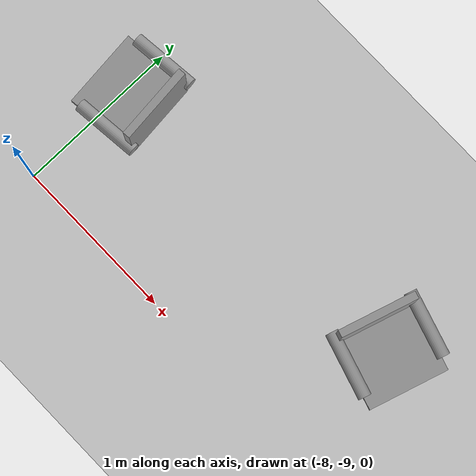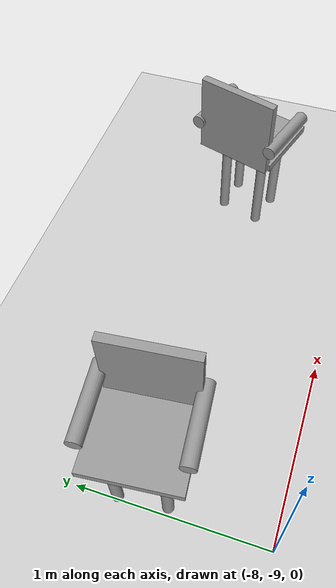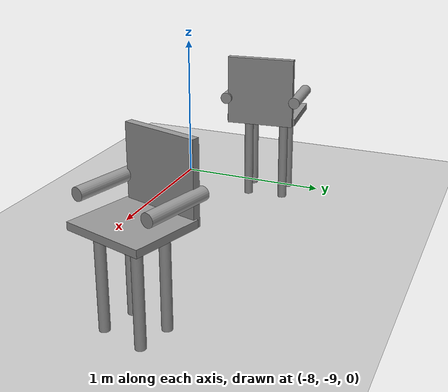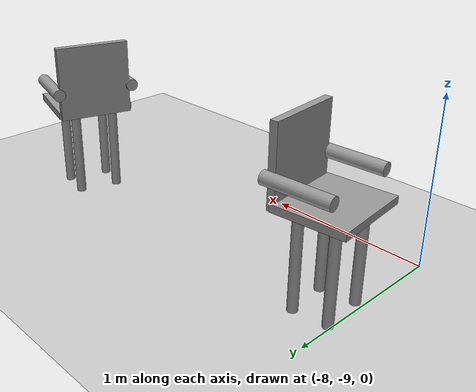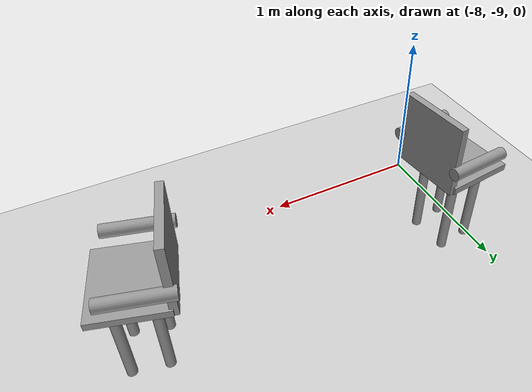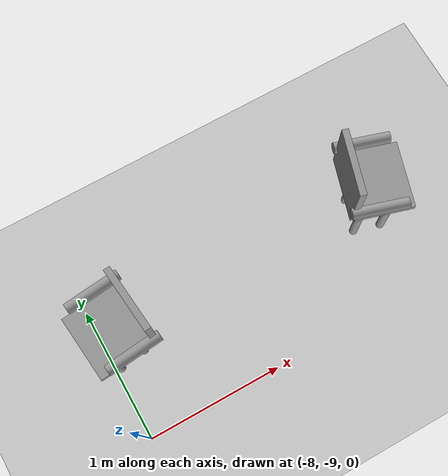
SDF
<sdf version="1.6">
 <world name="default">
  <model name="ground_plane">
   <static>1</static>
   <link name="link">
    <collision name="collision">
     <geometry><plane><normal>0 0 1</normal><size>100 100</size></plane></geometry>
     <surface>
      <contact><collide_bitmask>65535</collide_bitmask></contact>
      <friction><ode><mu>100</mu><mu2>50</mu2></ode></friction>
     </surface>
    </collision>
    <visual name="visual">
     <cast_shadows>0</cast_shadows>
     <geometry><plane><normal>0 0 1</normal><size>100 100</size></plane></geometry>
     <material>
      <script><uri>file://media/materials/scripts/gazebo.material</uri><name>Gazebo/Grey</name></script>
     </material>
    </visual>
   </link>
  </model>
  <model name="chair_clone_1">
   <link name="link_4">
    <inertial>
     <mass>0.00194051</mass>
     <inertia>
      <ixx>5.14044e-05</ixx>
      <ixy>0</ixy>
      <ixz>0</ixz>
      <iyy>5.14044e-05</iyy>
      <iyz>0</iyz>
      <izz>8.34973e-07</izz>
     </inertia>
    </inertial>
    <pose>-0.140129 -0.127166 -0.209129 0 -0 0</pose>
    <visual name="visual">
     <geometry><cylinder><radius>0.0293355</radius><length>0.561516</length></cylinder></geometry>
     <material>
      <lighting>1</lighting>
      <script><uri>file://media/materials/scripts/gazebo.material</uri><name>Gazebo/Grey</name></script>
      <emissive>0 0 0 1</emissive>
     </material>
    </visual>
    <collision name="collision">
     <geometry><cylinder><radius>0.029336</radius><length>0.561516</length></cylinder></geometry>
     <surface>
      <friction>
       <ode><mu>1</mu><mu2>1</mu2><fdir1>0 0 0</fdir1><slip1>0</slip1><slip2>0</slip2></ode>
       <torsional>
        <coefficient>1</coefficient>
        <patch_radius>0</patch_radius>
        <surface_radius>0</surface_radius>
        <use_patch_radius>1</use_patch_radius>
        <ode><slip>0</slip></ode>
       </torsional>
      </friction>
      <bounce><restitution_coefficient>0</restitution_coefficient><threshold>1e+06</threshold></bounce>
      <contact>
       <collide_without_contact>0</collide_without_contact>
       <collide_without_contact_bitmask>1</collide_without_contact_bitmask>
       <collide_bitmask>1</collide_bitmask>
       <ode>
        <soft_cfm>0</soft_cfm>
        <soft_erp>0.2</soft_erp>
        <kp>1e+13</kp>
        <kd>1</kd>
        <max_vel>0.01</max_vel>
        <min_depth>0</min_depth>
       </ode>
       <bullet>
        <split_impulse>1</split_impulse>
        <split_impulse_penetration_threshold>-0.01</split_impulse_penetration_threshold>
        <soft_cfm>0</soft_cfm>
        <soft_erp>0.2</soft_erp>
        <kp>1e+13</kp>
        <kd>1</kd>
       </bullet>
      </contact>
     </surface>
    </collision>
   </link>
   <link name="link_4_clone">
    <inertial>
     <mass>0.00194051</mass>
     <inertia>
      <ixx>5.14044e-05</ixx>
      <ixy>0</ixy>
      <ixz>0</ixz>
      <iyy>5.14044e-05</iyy>
      <iyz>0</iyz>
      <izz>8.34973e-07</izz>
     </inertia>
    </inertial>
    <pose>-0.139565 0.126187 -0.209129 0 -0 0</pose>
    <visual name="visual">
     <geometry><cylinder><radius>0.0293355</radius><length>0.561516</length></cylinder></geometry>
     <material>
      <lighting>1</lighting>
      <script><uri>file://media/materials/scripts/gazebo.material</uri><name>Gazebo/Grey</name></script>
      <shader type="pixel"/>
      <emissive>0 0 0 1</emissive>
     </material>
    </visual>
    <collision name="collision">
     <geometry><cylinder><radius>0.029336</radius><length>0.561516</length></cylinder></geometry>
     <surface>
      <friction>
       <ode><mu>1</mu><mu2>1</mu2><fdir1>0 0 0</fdir1><slip1>0</slip1><slip2>0</slip2></ode>
       <torsional>
        <coefficient>1</coefficient>
        <patch_radius>0</patch_radius>
        <surface_radius>0</surface_radius>
        <use_patch_radius>1</use_patch_radius>
        <ode><slip>0</slip></ode>
       </torsional>
      </friction>
      <bounce><restitution_coefficient>0</restitution_coefficient><threshold>1e+06</threshold></bounce>
      <contact>
       <collide_without_contact>0</collide_without_contact>
       <collide_without_contact_bitmask>1</collide_without_contact_bitmask>
       <collide_bitmask>1</collide_bitmask>
       <ode>
        <soft_cfm>0</soft_cfm>
        <soft_erp>0.2</soft_erp>
        <kp>1e+13</kp>
        <kd>1</kd>
        <max_vel>0.01</max_vel>
        <min_depth>0</min_depth>
       </ode>
       <bullet>
        <split_impulse>1</split_impulse>
        <split_impulse_penetration_threshold>-0.01</split_impulse_penetration_threshold>
        <soft_cfm>0</soft_cfm>
        <soft_erp>0.2</soft_erp>
        <kp>1e+13</kp>
        <kd>1</kd>
       </bullet>
      </contact>
     </surface>
    </collision>
   </link>
   <link name="link_4_clone_0">
    <inertial>
     <mass>0.00194051</mass>
     <inertia>
      <ixx>5.14044e-05</ixx>
      <ixy>0</ixy>
      <ixz>0</ixz>
      <iyy>5.14044e-05</iyy>
      <iyz>0</iyz>
      <izz>8.34973e-07</izz>
     </inertia>
    </inertial>
    <pose>0.062929 0.13105 -0.209129 0 -0 0</pose>
    <visual name="visual">
     <geometry><cylinder><radius>0.0293355</radius><length>0.561516</length></cylinder></geometry>
     <material>
      <lighting>1</lighting>
      <script><uri>file://media/materials/scripts/gazebo.material</uri><name>Gazebo/Grey</name></script>
      <shader type="pixel"/>
      <emissive>0 0 0 1</emissive>
     </material>
    </visual>
    <collision name="collision">
     <geometry><cylinder><radius>0.029336</radius><length>0.561516</length></cylinder></geometry>
     <surface>
      <friction>
       <ode><mu>1</mu><mu2>1</mu2><fdir1>0 0 0</fdir1><slip1>0</slip1><slip2>0</slip2></ode>
       <torsional>
        <coefficient>1</coefficient>
        <patch_radius>0</patch_radius>
        <surface_radius>0</surface_radius>
        <use_patch_radius>1</use_patch_radius>
        <ode><slip>0</slip></ode>
       </torsional>
      </friction>
      <bounce><restitution_coefficient>0</restitution_coefficient><threshold>1e+06</threshold></bounce>
      <contact>
       <collide_without_contact>0</collide_without_contact>
       <collide_without_contact_bitmask>1</collide_without_contact_bitmask>
       <collide_bitmask>1</collide_bitmask>
       <ode>
        <soft_cfm>0</soft_cfm>
        <soft_erp>0.2</soft_erp>
        <kp>1e+13</kp>
        <kd>1</kd>
        <max_vel>0.01</max_vel>
        <min_depth>0</min_depth>
       </ode>
       <bullet>
        <split_impulse>1</split_impulse>
        <split_impulse_penetration_threshold>-0.01</split_impulse_penetration_threshold>
        <soft_cfm>0</soft_cfm>
        <soft_erp>0.2</soft_erp>
        <kp>1e+13</kp>
        <kd>1</kd>
       </bullet>
      </contact>
     </surface>
    </collision>
   </link>
   <link name="link_4_clone_1">
    <inertial>
     <mass>0.00194051</mass>
     <inertia>
      <ixx>5.14044e-05</ixx>
      <ixy>0</ixy>
      <ixz>0</ixz>
      <iyy>5.14044e-05</iyy>
      <iyz>0</iyz>
      <izz>8.34973e-07</izz>
     </inertia>
    </inertial>
    <pose>0.061641 -0.111934 -0.209129 0 -0 0</pose>
    <visual name="visual">
     <geometry><cylinder><radius>0.0293355</radius><length>0.561516</length></cylinder></geometry>
     <material>
      <lighting>1</lighting>
      <script><uri>file://media/materials/scripts/gazebo.material</uri><name>Gazebo/Grey</name></script>
      <shader type="pixel"/>
      <emissive>0 0 0 1</emissive>
     </material>
    </visual>
    <collision name="collision">
     <geometry><cylinder><radius>0.029336</radius><length>0.561516</length></cylinder></geometry>
     <surface>
      <friction>
       <ode><mu>1</mu><mu2>1</mu2><fdir1>0 0 0</fdir1><slip1>0</slip1><slip2>0</slip2></ode>
       <torsional>
        <coefficient>1</coefficient>
        <patch_radius>0</patch_radius>
        <surface_radius>0</surface_radius>
        <use_patch_radius>1</use_patch_radius>
        <ode><slip>0</slip></ode>
       </torsional>
      </friction>
      <bounce><restitution_coefficient>0</restitution_coefficient><threshold>1e+06</threshold></bounce>
      <contact>
       <collide_without_contact>0</collide_without_contact>
       <collide_without_contact_bitmask>1</collide_without_contact_bitmask>
       <collide_bitmask>1</collide_bitmask>
       <ode>
        <soft_cfm>0</soft_cfm>
        <soft_erp>0.2</soft_erp>
        <kp>1e+13</kp>
        <kd>1</kd>
        <max_vel>0.01</max_vel>
        <min_depth>0</min_depth>
       </ode>
       <bullet>
        <split_impulse>1</split_impulse>
        <split_impulse_penetration_threshold>-0.01</split_impulse_penetration_threshold>
        <soft_cfm>0</soft_cfm>
        <soft_erp>0.2</soft_erp>
        <kp>1e+13</kp>
        <kd>1</kd>
       </bullet>
      </contact>
     </surface>
    </collision>
   </link>
   <link name="link_5">
    <inertial>
     <mass>0.00816884</mass>
     <inertia>
      <ixx>0.00015002</ixx>
      <ixy>0</ixy>
      <ixz>0</ixz>
      <iyy>0.000115328</iyy>
      <iyz>0</iyz>
      <izz>0.000262862</izz>
     </inertia>
    </inertial>
    <pose>-0.041662 -0.005028 0.089077 0 -0 0</pose>
    <visual name="visual">
     <geometry><box><size>0.409378 0.467496 0.042729</size></box></geometry>
     <material>
      <lighting>1</lighting>
      <script><uri>file://media/materials/scripts/gazebo.material</uri><name>Gazebo/Grey</name></script>
      <emissive>0 0 0 1</emissive>
     </material>
    </visual>
    <collision name="collision">
     <geometry><box><size>0.409378 0.467496 0.042729</size></box></geometry>
     <surface>
      <friction>
       <ode><mu>1</mu><mu2>1</mu2><fdir1>0 0 0</fdir1><slip1>0</slip1><slip2>0</slip2></ode>
       <torsional>
        <coefficient>1</coefficient>
        <patch_radius>0</patch_radius>
        <surface_radius>0</surface_radius>
        <use_patch_radius>1</use_patch_radius>
        <ode><slip>0</slip></ode>
       </torsional>
      </friction>
      <bounce><restitution_coefficient>0</restitution_coefficient><threshold>1e+06</threshold></bounce>
      <contact>
       <collide_without_contact>0</collide_without_contact>
       <collide_without_contact_bitmask>1</collide_without_contact_bitmask>
       <collide_bitmask>1</collide_bitmask>
       <ode>
        <soft_cfm>0</soft_cfm>
        <soft_erp>0.2</soft_erp>
        <kp>1e+13</kp>
        <kd>1</kd>
        <max_vel>0.01</max_vel>
        <min_depth>0</min_depth>
       </ode>
       <bullet>
        <split_impulse>1</split_impulse>
        <split_impulse_penetration_threshold>-0.01</split_impulse_penetration_threshold>
        <soft_cfm>0</soft_cfm>
        <soft_erp>0.2</soft_erp>
        <kp>1e+13</kp>
        <kd>1</kd>
       </bullet>
      </contact>
     </surface>
    </collision>
   </link>
   <link name="link_6">
    <inertial>
     <mass>0.00855687</mass>
     <inertia>
      <ixx>0.000285159</ixx>
      <ixy>0</ixy>
      <ixz>0</ixz>
      <iyy>0.000146983</iyy>
      <iyz>0</iyz>
      <izz>0.000140925</izz>
     </inertia>
    </inertial>
    <pose>0.165697 -0.006458 0.287866 0 -0 0</pose>
    <visual name="visual">
     <geometry><box><size>0.0439 0.442383 0.451884</size></box></geometry>
     <material>
      <lighting>1</lighting>
      <script><uri>file://media/materials/scripts/gazebo.material</uri><name>Gazebo/Grey</name></script>
      <emissive>0 0 0 1</emissive>
     </material>
    </visual>
    <collision name="collision">
     <geometry><box><size>0.0439 0.442383 0.451884</size></box></geometry>
     <surface>
      <friction>
       <ode><mu>1</mu><mu2>1</mu2><fdir1>0 0 0</fdir1><slip1>0</slip1><slip2>0</slip2></ode>
       <torsional>
        <coefficient>1</coefficient>
        <patch_radius>0</patch_radius>
        <surface_radius>0</surface_radius>
        <use_patch_radius>1</use_patch_radius>
        <ode><slip>0</slip></ode>
       </torsional>
      </friction>
      <bounce><restitution_coefficient>0</restitution_coefficient><threshold>1e+06</threshold></bounce>
      <contact>
       <collide_without_contact>0</collide_without_contact>
       <collide_without_contact_bitmask>1</collide_without_contact_bitmask>
       <collide_bitmask>1</collide_bitmask>
       <ode>
        <soft_cfm>0</soft_cfm>
        <soft_erp>0.2</soft_erp>
        <kp>1e+13</kp>
        <kd>1</kd>
        <max_vel>0.01</max_vel>
        <min_depth>0</min_depth>
       </ode>
       <bullet>
        <split_impulse>1</split_impulse>
        <split_impulse_penetration_threshold>-0.01</split_impulse_penetration_threshold>
        <soft_cfm>0</soft_cfm>
        <soft_erp>0.2</soft_erp>
        <kp>1e+13</kp>
        <kd>1</kd>
       </bullet>
      </contact>
     </surface>
    </collision>
   </link>
   <link name="link_7">
    <inertial>
     <mass>0.00209129</mass>
     <inertia>
      <ixx>2.57536e-05</ixx>
      <ixy>0</ixy>
      <ixz>0</ixz>
      <iyy>2.57536e-05</iyy>
      <iyz>0</iyz>
      <izz>1.44551e-06</izz>
     </inertia>
    </inertial>
    <pose>0.0147 0.228665 0.230372 0 1.55081 0</pose>
    <visual name="visual">
     <geometry><cylinder><radius>0.0371808</radius><length>0.378984</length></cylinder></geometry>
     <material>
      <lighting>1</lighting>
      <script><uri>file://media/materials/scripts/gazebo.material</uri><name>Gazebo/Grey</name></script>
      <emissive>0 0 0 1</emissive>
     </material>
    </visual>
    <collision name="collision">
     <geometry><cylinder><radius>0.037181</radius><length>0.378984</length></cylinder></geometry>
     <surface>
      <friction>
       <ode><mu>1</mu><mu2>1</mu2><fdir1>0 0 0</fdir1><slip1>0</slip1><slip2>0</slip2></ode>
       <torsional>
        <coefficient>1</coefficient>
        <patch_radius>0</patch_radius>
        <surface_radius>0</surface_radius>
        <use_patch_radius>1</use_patch_radius>
        <ode><slip>0</slip></ode>
       </torsional>
      </friction>
      <bounce><restitution_coefficient>0</restitution_coefficient><threshold>1e+06</threshold></bounce>
      <contact>
       <collide_without_contact>0</collide_without_contact>
       <collide_without_contact_bitmask>1</collide_without_contact_bitmask>
       <collide_bitmask>1</collide_bitmask>
       <ode>
        <soft_cfm>0</soft_cfm>
        <soft_erp>0.2</soft_erp>
        <kp>1e+13</kp>
        <kd>1</kd>
        <max_vel>0.01</max_vel>
        <min_depth>0</min_depth>
       </ode>
       <bullet>
        <split_impulse>1</split_impulse>
        <split_impulse_penetration_threshold>-0.01</split_impulse_penetration_threshold>
        <soft_cfm>0</soft_cfm>
        <soft_erp>0.2</soft_erp>
        <kp>1e+13</kp>
        <kd>1</kd>
       </bullet>
      </contact>
     </surface>
    </collision>
   </link>
   <link name="link_7_clone">
    <inertial>
     <mass>0.00209129</mass>
     <inertia>
      <ixx>2.57536e-05</ixx>
      <ixy>0</ixy>
      <ixz>0</ixz>
      <iyy>2.57536e-05</iyy>
      <iyz>0</iyz>
      <izz>1.44551e-06</izz>
     </inertia>
    </inertial>
    <pose>0.01639 -0.235319 0.229201 0 1.55081 0</pose>
    <visual name="visual">
     <geometry><cylinder><radius>0.0371808</radius><length>0.378984</length></cylinder></geometry>
     <material>
      <lighting>1</lighting>
      <script><uri>file://media/materials/scripts/gazebo.material</uri><name>Gazebo/Grey</name></script>
      <shader type="pixel"/>
      <emissive>0 0 0 1</emissive>
     </material>
    </visual>
    <collision name="collision">
     <geometry><cylinder><radius>0.037181</radius><length>0.378984</length></cylinder></geometry>
     <surface>
      <friction>
       <ode><mu>1</mu><mu2>1</mu2><fdir1>0 0 0</fdir1><slip1>0</slip1><slip2>0</slip2></ode>
       <torsional>
        <coefficient>1</coefficient>
        <patch_radius>0</patch_radius>
        <surface_radius>0</surface_radius>
        <use_patch_radius>1</use_patch_radius>
        <ode><slip>0</slip></ode>
       </torsional>
      </friction>
      <bounce><restitution_coefficient>0</restitution_coefficient><threshold>1e+06</threshold></bounce>
      <contact>
       <collide_without_contact>0</collide_without_contact>
       <collide_without_contact_bitmask>1</collide_without_contact_bitmask>
       <collide_bitmask>1</collide_bitmask>
       <ode>
        <soft_cfm>0</soft_cfm>
        <soft_erp>0.2</soft_erp>
        <kp>1e+13</kp>
        <kd>1</kd>
        <max_vel>0.01</max_vel>
        <min_depth>0</min_depth>
       </ode>
       <bullet>
        <split_impulse>1</split_impulse>
        <split_impulse_penetration_threshold>-0.01</split_impulse_penetration_threshold>
        <soft_cfm>0</soft_cfm>
        <soft_erp>0.2</soft_erp>
        <kp>1e+13</kp>
        <kd>1</kd>
       </bullet>
      </contact>
     </surface>
    </collision>
   </link>
   <joint name="link_5_JOINT_2" type="fixed">
    <parent>link_5</parent>
    <child>link_4_clone_1</child>
    <physics>
     <ode><limit><cfm>0</cfm><erp>0.2</erp></limit><suspension><cfm>0</cfm><erp>0.2</erp></suspension></ode>
    </physics>
   </joint>
   <joint name="link_5_JOINT_3" type="fixed">
    <parent>link_5</parent>
    <child>link_4</child>
    <physics>
     <ode><limit><cfm>0</cfm><erp>0.2</erp></limit><suspension><cfm>0</cfm><erp>0.2</erp></suspension></ode>
    </physics>
   </joint>
   <joint name="link_5_JOINT_4" type="fixed">
    <parent>link_5</parent>
    <child>link_4_clone_0</child>
    <physics>
     <ode><limit><cfm>0</cfm><erp>0.2</erp></limit><suspension><cfm>0</cfm><erp>0.2</erp></suspension></ode>
    </physics>
   </joint>
   <joint name="link_5_JOINT_5" type="fixed">
    <parent>link_5</parent>
    <child>link_4_clone</child>
    <physics>
     <ode><limit><cfm>0</cfm><erp>0.2</erp></limit><suspension><cfm>0</cfm><erp>0.2</erp></suspension></ode>
    </physics>
   </joint>
   <joint name="link_5_JOINT_6" type="fixed">
    <parent>link_5</parent>
    <child>link_6</child>
    <physics>
     <ode><limit><cfm>0</cfm><erp>0.2</erp></limit><suspension><cfm>0</cfm><erp>0.2</erp></suspension></ode>
    </physics>
   </joint>
   <joint name="link_5_JOINT_7" type="fixed">
    <parent>link_5</parent>
    <child>link_7</child>
    <physics>
     <ode><limit><cfm>0</cfm><erp>0.2</erp></limit><suspension><cfm>0</cfm><erp>0.2</erp></suspension></ode>
    </physics>
   </joint>
   <joint name="link_5_JOINT_8" type="fixed">
    <parent>link_5</parent>
    <child>link_7_clone</child>
    <physics>
     <ode><limit><cfm>0</cfm><erp>0.2</erp></limit><suspension><cfm>0</cfm><erp>0.2</erp></suspension></ode>
    </physics>
   </joint>
   <static>0</static>
   <pose>-7.83068 -8.32753 0.489878 -0 3.3e-05 0.100144</pose>
  </model>
  <model name="chair_clone_0_clone_0">
   <link name="link_4">
    <inertial>
     <mass>0.00194051</mass>
     <inertia>
      <ixx>5.14044e-05</ixx>
      <ixy>0</ixy>
      <ixz>0</ixz>
      <iyy>5.14044e-05</iyy>
      <iyz>0</iyz>
      <izz>8.34973e-07</izz>
     </inertia>
    </inertial>
    <pose>-0.140129 -0.127166 -0.209129 0 -0 0</pose>
    <visual name="visual">
     <geometry><cylinder><radius>0.0293355</radius><length>0.561516</length></cylinder></geometry>
     <material>
      <lighting>1</lighting>
      <script><uri>file://media/materials/scripts/gazebo.material</uri><name>Gazebo/Grey</name></script>
      <emissive>0 0 0 1</emissive>
     </material>
    </visual>
    <collision name="collision">
     <geometry><cylinder><radius>0.029336</radius><length>0.561516</length></cylinder></geometry>
     <surface>
      <friction>
       <ode><mu>1</mu><mu2>1</mu2><fdir1>0 0 0</fdir1><slip1>0</slip1><slip2>0</slip2></ode>
       <torsional>
        <coefficient>1</coefficient>
        <patch_radius>0</patch_radius>
        <surface_radius>0</surface_radius>
        <use_patch_radius>1</use_patch_radius>
        <ode><slip>0</slip></ode>
       </torsional>
      </friction>
      <bounce><restitution_coefficient>0</restitution_coefficient><threshold>1e+06</threshold></bounce>
      <contact>
       <collide_without_contact>0</collide_without_contact>
       <collide_without_contact_bitmask>1</collide_without_contact_bitmask>
       <collide_bitmask>1</collide_bitmask>
       <ode>
        <soft_cfm>0</soft_cfm>
        <soft_erp>0.2</soft_erp>
        <kp>1e+13</kp>
        <kd>1</kd>
        <max_vel>0.01</max_vel>
        <min_depth>0</min_depth>
       </ode>
       <bullet>
        <split_impulse>1</split_impulse>
        <split_impulse_penetration_threshold>-0.01</split_impulse_penetration_threshold>
        <soft_cfm>0</soft_cfm>
        <soft_erp>0.2</soft_erp>
        <kp>1e+13</kp>
        <kd>1</kd>
       </bullet>
      </contact>
     </surface>
    </collision>
   </link>
   <link name="link_4_clone">
    <inertial>
     <mass>0.00194051</mass>
     <inertia>
      <ixx>5.14044e-05</ixx>
      <ixy>0</ixy>
      <ixz>0</ixz>
      <iyy>5.14044e-05</iyy>
      <iyz>0</iyz>
      <izz>8.34973e-07</izz>
     </inertia>
    </inertial>
    <pose>-0.139565 0.126187 -0.209129 0 -0 0</pose>
    <visual name="visual">
     <geometry><cylinder><radius>0.0293355</radius><length>0.561516</length></cylinder></geometry>
     <material>
      <lighting>1</lighting>
      <script><uri>file://media/materials/scripts/gazebo.material</uri><name>Gazebo/Grey</name></script>
      <shader type="pixel"/>
      <emissive>0 0 0 1</emissive>
     </material>
    </visual>
    <collision name="collision">
     <geometry><cylinder><radius>0.029336</radius><length>0.561516</length></cylinder></geometry>
     <surface>
      <friction>
       <ode><mu>1</mu><mu2>1</mu2><fdir1>0 0 0</fdir1><slip1>0</slip1><slip2>0</slip2></ode>
       <torsional>
        <coefficient>1</coefficient>
        <patch_radius>0</patch_radius>
        <surface_radius>0</surface_radius>
        <use_patch_radius>1</use_patch_radius>
        <ode><slip>0</slip></ode>
       </torsional>
      </friction>
      <bounce><restitution_coefficient>0</restitution_coefficient><threshold>1e+06</threshold></bounce>
      <contact>
       <collide_without_contact>0</collide_without_contact>
       <collide_without_contact_bitmask>1</collide_without_contact_bitmask>
       <collide_bitmask>1</collide_bitmask>
       <ode>
        <soft_cfm>0</soft_cfm>
        <soft_erp>0.2</soft_erp>
        <kp>1e+13</kp>
        <kd>1</kd>
        <max_vel>0.01</max_vel>
        <min_depth>0</min_depth>
       </ode>
       <bullet>
        <split_impulse>1</split_impulse>
        <split_impulse_penetration_threshold>-0.01</split_impulse_penetration_threshold>
        <soft_cfm>0</soft_cfm>
        <soft_erp>0.2</soft_erp>
        <kp>1e+13</kp>
        <kd>1</kd>
       </bullet>
      </contact>
     </surface>
    </collision>
   </link>
   <link name="link_4_clone_0">
    <inertial>
     <mass>0.00194051</mass>
     <inertia>
      <ixx>5.14044e-05</ixx>
      <ixy>0</ixy>
      <ixz>0</ixz>
      <iyy>5.14044e-05</iyy>
      <iyz>0</iyz>
      <izz>8.34973e-07</izz>
     </inertia>
    </inertial>
    <pose>0.062929 0.13105 -0.209129 0 -0 0</pose>
    <visual name="visual">
     <geometry><cylinder><radius>0.0293355</radius><length>0.561516</length></cylinder></geometry>
     <material>
      <lighting>1</lighting>
      <script><uri>file://media/materials/scripts/gazebo.material</uri><name>Gazebo/Grey</name></script>
      <shader type="pixel"/>
      <emissive>0 0 0 1</emissive>
     </material>
    </visual>
    <collision name="collision">
     <geometry><cylinder><radius>0.029336</radius><length>0.561516</length></cylinder></geometry>
     <surface>
      <friction>
       <ode><mu>1</mu><mu2>1</mu2><fdir1>0 0 0</fdir1><slip1>0</slip1><slip2>0</slip2></ode>
       <torsional>
        <coefficient>1</coefficient>
        <patch_radius>0</patch_radius>
        <surface_radius>0</surface_radius>
        <use_patch_radius>1</use_patch_radius>
        <ode><slip>0</slip></ode>
       </torsional>
      </friction>
      <bounce><restitution_coefficient>0</restitution_coefficient><threshold>1e+06</threshold></bounce>
      <contact>
       <collide_without_contact>0</collide_without_contact>
       <collide_without_contact_bitmask>1</collide_without_contact_bitmask>
       <collide_bitmask>1</collide_bitmask>
       <ode>
        <soft_cfm>0</soft_cfm>
        <soft_erp>0.2</soft_erp>
        <kp>1e+13</kp>
        <kd>1</kd>
        <max_vel>0.01</max_vel>
        <min_depth>0</min_depth>
       </ode>
       <bullet>
        <split_impulse>1</split_impulse>
        <split_impulse_penetration_threshold>-0.01</split_impulse_penetration_threshold>
        <soft_cfm>0</soft_cfm>
        <soft_erp>0.2</soft_erp>
        <kp>1e+13</kp>
        <kd>1</kd>
       </bullet>
      </contact>
     </surface>
    </collision>
   </link>
   <link name="link_4_clone_1">
    <inertial>
     <mass>0.00194051</mass>
     <inertia>
      <ixx>5.14044e-05</ixx>
      <ixy>0</ixy>
      <ixz>0</ixz>
      <iyy>5.14044e-05</iyy>
      <iyz>0</iyz>
      <izz>8.34973e-07</izz>
     </inertia>
    </inertial>
    <pose>0.061641 -0.111934 -0.209129 0 -0 0</pose>
    <visual name="visual">
     <geometry><cylinder><radius>0.0293355</radius><length>0.561516</length></cylinder></geometry>
     <material>
      <lighting>1</lighting>
      <script><uri>file://media/materials/scripts/gazebo.material</uri><name>Gazebo/Grey</name></script>
      <shader type="pixel"/>
      <emissive>0 0 0 1</emissive>
     </material>
    </visual>
    <collision name="collision">
     <geometry><cylinder><radius>0.029336</radius><length>0.561516</length></cylinder></geometry>
     <surface>
      <friction>
       <ode><mu>1</mu><mu2>1</mu2><fdir1>0 0 0</fdir1><slip1>0</slip1><slip2>0</slip2></ode>
       <torsional>
        <coefficient>1</coefficient>
        <patch_radius>0</patch_radius>
        <surface_radius>0</surface_radius>
        <use_patch_radius>1</use_patch_radius>
        <ode><slip>0</slip></ode>
       </torsional>
      </friction>
      <bounce><restitution_coefficient>0</restitution_coefficient><threshold>1e+06</threshold></bounce>
      <contact>
       <collide_without_contact>0</collide_without_contact>
       <collide_without_contact_bitmask>1</collide_without_contact_bitmask>
       <collide_bitmask>1</collide_bitmask>
       <ode>
        <soft_cfm>0</soft_cfm>
        <soft_erp>0.2</soft_erp>
        <kp>1e+13</kp>
        <kd>1</kd>
        <max_vel>0.01</max_vel>
        <min_depth>0</min_depth>
       </ode>
       <bullet>
        <split_impulse>1</split_impulse>
        <split_impulse_penetration_threshold>-0.01</split_impulse_penetration_threshold>
        <soft_cfm>0</soft_cfm>
        <soft_erp>0.2</soft_erp>
        <kp>1e+13</kp>
        <kd>1</kd>
       </bullet>
      </contact>
     </surface>
    </collision>
   </link>
   <link name="link_5">
    <inertial>
     <mass>0.00816884</mass>
     <inertia>
      <ixx>0.00015002</ixx>
      <ixy>0</ixy>
      <ixz>0</ixz>
      <iyy>0.000115328</iyy>
      <iyz>0</iyz>
      <izz>0.000262862</izz>
     </inertia>
    </inertial>
    <pose>-0.041662 -0.005028 0.089077 0 -0 0</pose>
    <visual name="visual">
     <geometry><box><size>0.409378 0.467496 0.042729</size></box></geometry>
     <material>
      <lighting>1</lighting>
      <script><uri>file://media/materials/scripts/gazebo.material</uri><name>Gazebo/Grey</name></script>
      <emissive>0 0 0 1</emissive>
     </material>
    </visual>
    <collision name="collision">
     <geometry><box><size>0.409378 0.467496 0.042729</size></box></geometry>
     <surface>
      <friction>
       <ode><mu>1</mu><mu2>1</mu2><fdir1>0 0 0</fdir1><slip1>0</slip1><slip2>0</slip2></ode>
       <torsional>
        <coefficient>1</coefficient>
        <patch_radius>0</patch_radius>
        <surface_radius>0</surface_radius>
        <use_patch_radius>1</use_patch_radius>
        <ode><slip>0</slip></ode>
       </torsional>
      </friction>
      <bounce><restitution_coefficient>0</restitution_coefficient><threshold>1e+06</threshold></bounce>
      <contact>
       <collide_without_contact>0</collide_without_contact>
       <collide_without_contact_bitmask>1</collide_without_contact_bitmask>
       <collide_bitmask>1</collide_bitmask>
       <ode>
        <soft_cfm>0</soft_cfm>
        <soft_erp>0.2</soft_erp>
        <kp>1e+13</kp>
        <kd>1</kd>
        <max_vel>0.01</max_vel>
        <min_depth>0</min_depth>
       </ode>
       <bullet>
        <split_impulse>1</split_impulse>
        <split_impulse_penetration_threshold>-0.01</split_impulse_penetration_threshold>
        <soft_cfm>0</soft_cfm>
        <soft_erp>0.2</soft_erp>
        <kp>1e+13</kp>
        <kd>1</kd>
       </bullet>
      </contact>
     </surface>
    </collision>
   </link>
   <link name="link_6">
    <inertial>
     <mass>0.00855687</mass>
     <inertia>
      <ixx>0.000285159</ixx>
      <ixy>0</ixy>
      <ixz>0</ixz>
      <iyy>0.000146983</iyy>
      <iyz>0</iyz>
      <izz>0.000140925</izz>
     </inertia>
    </inertial>
    <pose>0.165697 -0.006458 0.287866 0 -0 0</pose>
    <visual name="visual">
     <geometry><box><size>0.0439 0.442383 0.451884</size></box></geometry>
     <material>
      <lighting>1</lighting>
      <script><uri>file://media/materials/scripts/gazebo.material</uri><name>Gazebo/Grey</name></script>
      <emissive>0 0 0 1</emissive>
     </material>
    </visual>
    <collision name="collision">
     <geometry><box><size>0.0439 0.442383 0.451884</size></box></geometry>
     <surface>
      <friction>
       <ode><mu>1</mu><mu2>1</mu2><fdir1>0 0 0</fdir1><slip1>0</slip1><slip2>0</slip2></ode>
       <torsional>
        <coefficient>1</coefficient>
        <patch_radius>0</patch_radius>
        <surface_radius>0</surface_radius>
        <use_patch_radius>1</use_patch_radius>
        <ode><slip>0</slip></ode>
       </torsional>
      </friction>
      <bounce><restitution_coefficient>0</restitution_coefficient><threshold>1e+06</threshold></bounce>
      <contact>
       <collide_without_contact>0</collide_without_contact>
       <collide_without_contact_bitmask>1</collide_without_contact_bitmask>
       <collide_bitmask>1</collide_bitmask>
       <ode>
        <soft_cfm>0</soft_cfm>
        <soft_erp>0.2</soft_erp>
        <kp>1e+13</kp>
        <kd>1</kd>
        <max_vel>0.01</max_vel>
        <min_depth>0</min_depth>
       </ode>
       <bullet>
        <split_impulse>1</split_impulse>
        <split_impulse_penetration_threshold>-0.01</split_impulse_penetration_threshold>
        <soft_cfm>0</soft_cfm>
        <soft_erp>0.2</soft_erp>
        <kp>1e+13</kp>
        <kd>1</kd>
       </bullet>
      </contact>
     </surface>
    </collision>
   </link>
   <link name="link_7">
    <inertial>
     <mass>0.00209129</mass>
     <inertia>
      <ixx>2.57536e-05</ixx>
      <ixy>0</ixy>
      <ixz>0</ixz>
      <iyy>2.57536e-05</iyy>
      <iyz>0</iyz>
      <izz>1.44551e-06</izz>
     </inertia>
    </inertial>
    <pose>0.0147 0.228665 0.230372 0 1.55081 0</pose>
    <visual name="visual">
     <geometry><cylinder><radius>0.0371808</radius><length>0.378984</length></cylinder></geometry>
     <material>
      <lighting>1</lighting>
      <script><uri>file://media/materials/scripts/gazebo.material</uri><name>Gazebo/Grey</name></script>
      <emissive>0 0 0 1</emissive>
     </material>
    </visual>
    <collision name="collision">
     <geometry><cylinder><radius>0.037181</radius><length>0.378984</length></cylinder></geometry>
     <surface>
      <friction>
       <ode><mu>1</mu><mu2>1</mu2><fdir1>0 0 0</fdir1><slip1>0</slip1><slip2>0</slip2></ode>
       <torsional>
        <coefficient>1</coefficient>
        <patch_radius>0</patch_radius>
        <surface_radius>0</surface_radius>
        <use_patch_radius>1</use_patch_radius>
        <ode><slip>0</slip></ode>
       </torsional>
      </friction>
      <bounce><restitution_coefficient>0</restitution_coefficient><threshold>1e+06</threshold></bounce>
      <contact>
       <collide_without_contact>0</collide_without_contact>
       <collide_without_contact_bitmask>1</collide_without_contact_bitmask>
       <collide_bitmask>1</collide_bitmask>
       <ode>
        <soft_cfm>0</soft_cfm>
        <soft_erp>0.2</soft_erp>
        <kp>1e+13</kp>
        <kd>1</kd>
        <max_vel>0.01</max_vel>
        <min_depth>0</min_depth>
       </ode>
       <bullet>
        <split_impulse>1</split_impulse>
        <split_impulse_penetration_threshold>-0.01</split_impulse_penetration_threshold>
        <soft_cfm>0</soft_cfm>
        <soft_erp>0.2</soft_erp>
        <kp>1e+13</kp>
        <kd>1</kd>
       </bullet>
      </contact>
     </surface>
    </collision>
   </link>
   <link name="link_7_clone">
    <inertial>
     <mass>0.00209129</mass>
     <inertia>
      <ixx>2.57536e-05</ixx>
      <ixy>0</ixy>
      <ixz>0</ixz>
      <iyy>2.57536e-05</iyy>
      <iyz>0</iyz>
      <izz>1.44551e-06</izz>
     </inertia>
    </inertial>
    <pose>0.01639 -0.235319 0.229201 0 1.55081 0</pose>
    <visual name="visual">
     <geometry><cylinder><radius>0.0371808</radius><length>0.378984</length></cylinder></geometry>
     <material>
      <lighting>1</lighting>
      <script><uri>file://media/materials/scripts/gazebo.material</uri><name>Gazebo/Grey</name></script>
      <shader type="pixel"/>
      <emissive>0 0 0 1</emissive>
     </material>
    </visual>
    <collision name="collision">
     <geometry><cylinder><radius>0.037181</radius><length>0.378984</length></cylinder></geometry>
     <surface>
      <friction>
       <ode><mu>1</mu><mu2>1</mu2><fdir1>0 0 0</fdir1><slip1>0</slip1><slip2>0</slip2></ode>
       <torsional>
        <coefficient>1</coefficient>
        <patch_radius>0</patch_radius>
        <surface_radius>0</surface_radius>
        <use_patch_radius>1</use_patch_radius>
        <ode><slip>0</slip></ode>
       </torsional>
      </friction>
      <bounce><restitution_coefficient>0</restitution_coefficient><threshold>1e+06</threshold></bounce>
      <contact>
       <collide_without_contact>0</collide_without_contact>
       <collide_without_contact_bitmask>1</collide_without_contact_bitmask>
       <collide_bitmask>1</collide_bitmask>
       <ode>
        <soft_cfm>0</soft_cfm>
        <soft_erp>0.2</soft_erp>
        <kp>1e+13</kp>
        <kd>1</kd>
        <max_vel>0.01</max_vel>
        <min_depth>0</min_depth>
       </ode>
       <bullet>
        <split_impulse>1</split_impulse>
        <split_impulse_penetration_threshold>-0.01</split_impulse_penetration_threshold>
        <soft_cfm>0</soft_cfm>
        <soft_erp>0.2</soft_erp>
        <kp>1e+13</kp>
        <kd>1</kd>
       </bullet>
      </contact>
     </surface>
    </collision>
   </link>
   <joint name="link_5_JOINT_2" type="fixed">
    <parent>link_5</parent>
    <child>link_4_clone_1</child>
    <physics>
     <ode><limit><cfm>0</cfm><erp>0.2</erp></limit><suspension><cfm>0</cfm><erp>0.2</erp></suspension></ode>
    </physics>
   </joint>
   <joint name="link_5_JOINT_3" type="fixed">
    <parent>link_5</parent>
    <child>link_4</child>
    <physics>
     <ode><limit><cfm>0</cfm><erp>0.2</erp></limit><suspension><cfm>0</cfm><erp>0.2</erp></suspension></ode>
    </physics>
   </joint>
   <joint name="link_5_JOINT_4" type="fixed">
    <parent>link_5</parent>
    <child>link_4_clone_0</child>
    <physics>
     <ode><limit><cfm>0</cfm><erp>0.2</erp></limit><suspension><cfm>0</cfm><erp>0.2</erp></suspension></ode>
    </physics>
   </joint>
   <joint name="link_5_JOINT_5" type="fixed">
    <parent>link_5</parent>
    <child>link_4_clone</child>
    <physics>
     <ode><limit><cfm>0</cfm><erp>0.2</erp></limit><suspension><cfm>0</cfm><erp>0.2</erp></suspension></ode>
    </physics>
   </joint>
   <joint name="link_5_JOINT_6" type="fixed">
    <parent>link_5</parent>
    <child>link_6</child>
    <physics>
     <ode><limit><cfm>0</cfm><erp>0.2</erp></limit><suspension><cfm>0</cfm><erp>0.2</erp></suspension></ode>
    </physics>
   </joint>
   <joint name="link_5_JOINT_7" type="fixed">
    <parent>link_5</parent>
    <child>link_7</child>
    <physics>
     <ode><limit><cfm>0</cfm><erp>0.2</erp></limit><suspension><cfm>0</cfm><erp>0.2</erp></suspension></ode>
    </physics>
   </joint>
   <joint name="link_5_JOINT_8" type="fixed">
    <parent>link_5</parent>
    <child>link_7_clone</child>
    <physics>
     <ode><limit><cfm>0</cfm><erp>0.2</erp></limit><suspension><cfm>0</cfm><erp>0.2</erp></suspension></ode>
    </physics>
   </joint>
   <static>0</static>
   <pose>-5.92423 -8.29377 0.489879 4e-06 3.1e-05 2.85042</pose>
  </model>
 </world>
</sdf>
